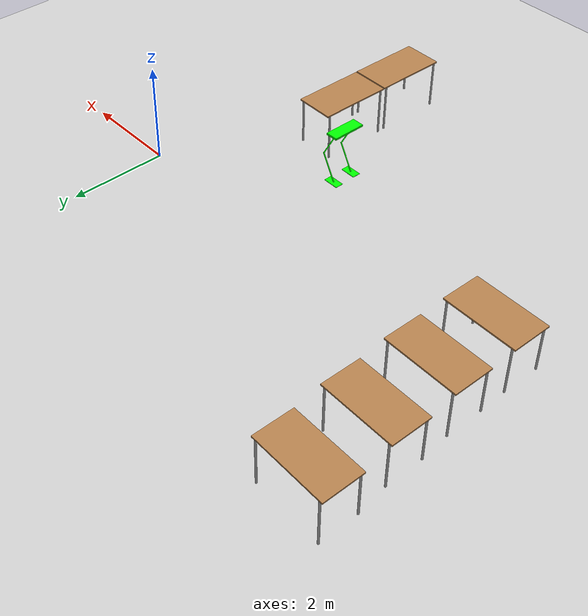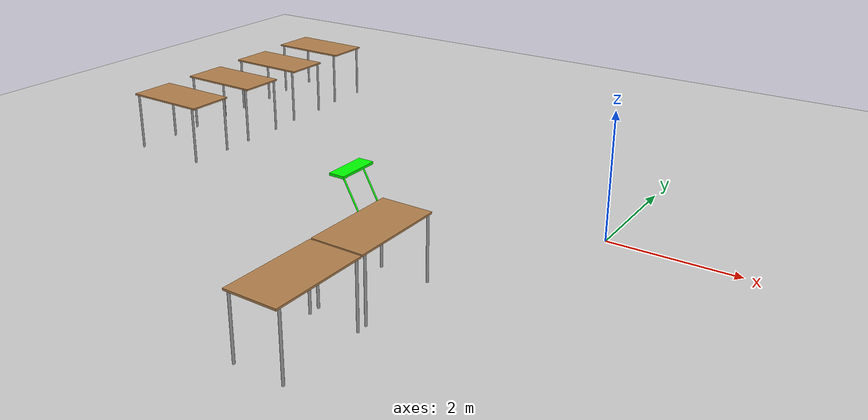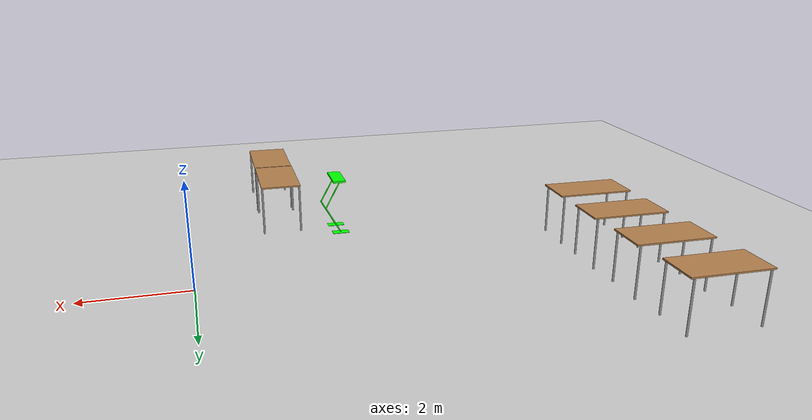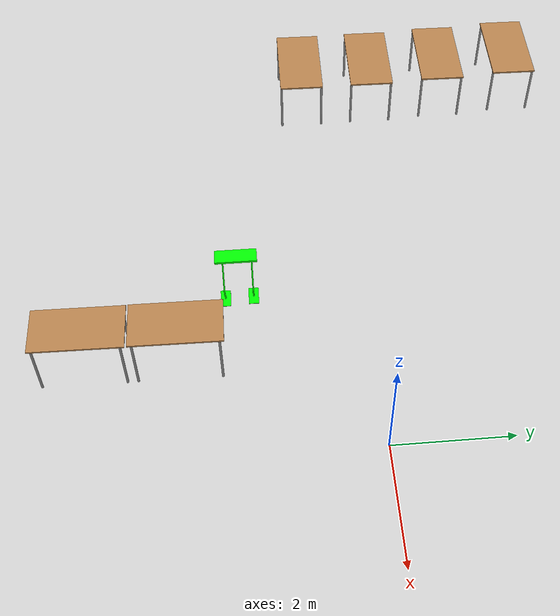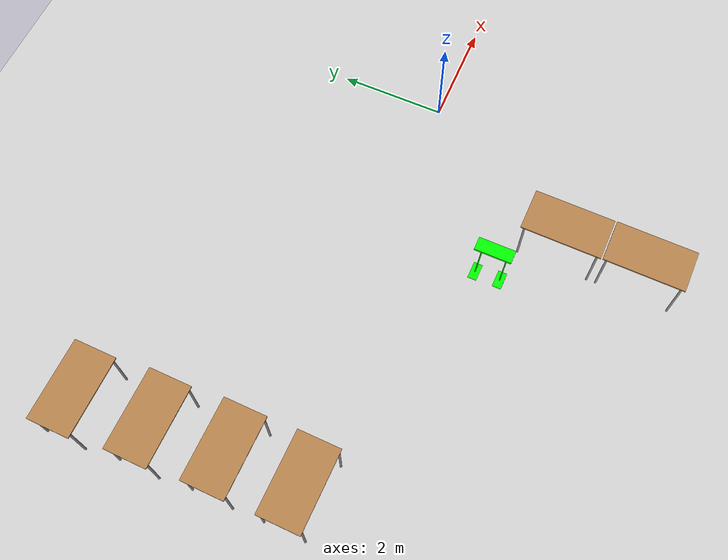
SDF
<sdf version="1.7">
 <world name="default">
  <model name="table">
   <static>1</static>
   <link name="link">
    <collision name="surface">
     <pose>0 0 1 0 -0 0</pose>
     <geometry><box><size>1.5 0.8 0.03</size></box></geometry>
     <surface><friction><ode><mu>0.6</mu><mu2>0.6</mu2></ode></friction></surface>
    </collision>
    <visual name="visual1">
     <pose>0 0 1 0 -0 0</pose>
     <geometry><box><size>1.5 0.8 0.03</size></box></geometry>
     <material>
      <script><uri>file://media/materials/scripts/gazebo.material</uri><name>Gazebo/Wood</name></script>
     </material>
    </visual>
    <collision name="front_left_leg">
     <pose>0.68 0.38 0.5 0 -0 0</pose>
     <geometry><cylinder><radius>0.02</radius><length>1</length></cylinder></geometry>
    </collision>
    <visual name="front_left_leg">
     <pose>0.68 0.38 0.5 0 -0 0</pose>
     <geometry><cylinder><radius>0.02</radius><length>1</length></cylinder></geometry>
     <material>
      <script><uri>file://media/materials/scripts/gazebo.material</uri><name>Gazebo/Grey</name></script>
     </material>
    </visual>
    <collision name="front_right_leg">
     <pose>0.68 -0.38 0.5 0 -0 0</pose>
     <geometry><cylinder><radius>0.02</radius><length>1</length></cylinder></geometry>
    </collision>
    <visual name="front_right_leg">
     <pose>0.68 -0.38 0.5 0 -0 0</pose>
     <geometry><cylinder><radius>0.02</radius><length>1</length></cylinder></geometry>
     <material>
      <script><uri>file://media/materials/scripts/gazebo.material</uri><name>Gazebo/Grey</name></script>
     </material>
    </visual>
    <collision name="back_right_leg">
     <pose>-0.68 -0.38 0.5 0 -0 0</pose>
     <geometry><cylinder><radius>0.02</radius><length>1</length></cylinder></geometry>
    </collision>
    <visual name="back_right_leg">
     <pose>-0.68 -0.38 0.5 0 -0 0</pose>
     <geometry><cylinder><radius>0.02</radius><length>1</length></cylinder></geometry>
     <material>
      <script><uri>file://media/materials/scripts/gazebo.material</uri><name>Gazebo/Grey</name></script>
     </material>
    </visual>
    <collision name="back_left_leg">
     <pose>-0.68 0.38 0.5 0 -0 0</pose>
     <geometry><cylinder><radius>0.02</radius><length>1</length></cylinder></geometry>
    </collision>
    <visual name="back_left_leg">
     <pose>-0.68 0.38 0.5 0 -0 0</pose>
     <geometry><cylinder><radius>0.02</radius><length>1</length></cylinder></geometry>
     <material>
      <script><uri>file://media/materials/scripts/gazebo.material</uri><name>Gazebo/Grey</name></script>
     </material>
    </visual>
   </link>
   <pose>-1.8765 -3.16939 0 0 0 -1.58492</pose>
  </model>
  <model name="table_clone">
   <static>1</static>
   <link name="link">
    <collision name="surface">
     <pose>0 0 1 0 -0 0</pose>
     <geometry><box><size>1.5 0.8 0.03</size></box></geometry>
     <surface><friction><ode><mu>0.6</mu><mu2>0.6</mu2></ode></friction></surface>
    </collision>
    <visual name="visual1">
     <pose>0 0 1 0 -0 0</pose>
     <geometry><box><size>1.5 0.8 0.03</size></box></geometry>
     <material>
      <script><uri>file://media/materials/scripts/gazebo.material</uri><name>Gazebo/Wood</name></script>
     </material>
    </visual>
    <collision name="front_left_leg">
     <pose>0.68 0.38 0.5 0 -0 0</pose>
     <geometry><cylinder><radius>0.02</radius><length>1</length></cylinder></geometry>
    </collision>
    <visual name="front_left_leg">
     <pose>0.68 0.38 0.5 0 -0 0</pose>
     <geometry><cylinder><radius>0.02</radius><length>1</length></cylinder></geometry>
     <material>
      <script><uri>file://media/materials/scripts/gazebo.material</uri><name>Gazebo/Grey</name></script>
     </material>
    </visual>
    <collision name="front_right_leg">
     <pose>0.68 -0.38 0.5 0 -0 0</pose>
     <geometry><cylinder><radius>0.02</radius><length>1</length></cylinder></geometry>
    </collision>
    <visual name="front_right_leg">
     <pose>0.68 -0.38 0.5 0 -0 0</pose>
     <geometry><cylinder><radius>0.02</radius><length>1</length></cylinder></geometry>
     <material>
      <script><uri>file://media/materials/scripts/gazebo.material</uri><name>Gazebo/Grey</name></script>
     </material>
    </visual>
    <collision name="back_right_leg">
     <pose>-0.68 -0.38 0.5 0 -0 0</pose>
     <geometry><cylinder><radius>0.02</radius><length>1</length></cylinder></geometry>
    </collision>
    <visual name="back_right_leg">
     <pose>-0.68 -0.38 0.5 0 -0 0</pose>
     <geometry><cylinder><radius>0.02</radius><length>1</length></cylinder></geometry>
     <material>
      <script><uri>file://media/materials/scripts/gazebo.material</uri><name>Gazebo/Grey</name></script>
     </material>
    </visual>
    <collision name="back_left_leg">
     <pose>-0.68 0.38 0.5 0 -0 0</pose>
     <geometry><cylinder><radius>0.02</radius><length>1</length></cylinder></geometry>
    </collision>
    <visual name="back_left_leg">
     <pose>-0.68 0.38 0.5 0 -0 0</pose>
     <geometry><cylinder><radius>0.02</radius><length>1</length></cylinder></geometry>
     <material>
      <script><uri>file://media/materials/scripts/gazebo.material</uri><name>Gazebo/Grey</name></script>
     </material>
    </visual>
   </link>
   <pose>-1.89111 -4.70011 0 0 0 -1.58492</pose>
  </model>
  <model name="table_clone_4">
   <static>1</static>
   <link name="link">
    <collision name="surface">
     <pose>0 0 1 0 -0 0</pose>
     <geometry><box><size>1.5 0.8 0.03</size></box></geometry>
     <surface><friction><ode><mu>0.6</mu><mu2>0.6</mu2></ode></friction></surface>
    </collision>
    <visual name="visual1">
     <pose>0 0 1 0 -0 0</pose>
     <geometry><box><size>1.5 0.8 0.03</size></box></geometry>
     <material>
      <script><uri>file://media/materials/scripts/gazebo.material</uri><name>Gazebo/Wood</name></script>
     </material>
    </visual>
    <collision name="front_left_leg">
     <pose>0.68 0.38 0.5 0 -0 0</pose>
     <geometry><cylinder><radius>0.02</radius><length>1</length></cylinder></geometry>
    </collision>
    <visual name="front_left_leg">
     <pose>0.68 0.38 0.5 0 -0 0</pose>
     <geometry><cylinder><radius>0.02</radius><length>1</length></cylinder></geometry>
     <material>
      <script><uri>file://media/materials/scripts/gazebo.material</uri><name>Gazebo/Grey</name></script>
     </material>
    </visual>
    <collision name="front_right_leg">
     <pose>0.68 -0.38 0.5 0 -0 0</pose>
     <geometry><cylinder><radius>0.02</radius><length>1</length></cylinder></geometry>
    </collision>
    <visual name="front_right_leg">
     <pose>0.68 -0.38 0.5 0 -0 0</pose>
     <geometry><cylinder><radius>0.02</radius><length>1</length></cylinder></geometry>
     <material>
      <script><uri>file://media/materials/scripts/gazebo.material</uri><name>Gazebo/Grey</name></script>
     </material>
    </visual>
    <collision name="back_right_leg">
     <pose>-0.68 -0.38 0.5 0 -0 0</pose>
     <geometry><cylinder><radius>0.02</radius><length>1</length></cylinder></geometry>
    </collision>
    <visual name="back_right_leg">
     <pose>-0.68 -0.38 0.5 0 -0 0</pose>
     <geometry><cylinder><radius>0.02</radius><length>1</length></cylinder></geometry>
     <material>
      <script><uri>file://media/materials/scripts/gazebo.material</uri><name>Gazebo/Grey</name></script>
     </material>
    </visual>
    <collision name="back_left_leg">
     <pose>-0.68 0.38 0.5 0 -0 0</pose>
     <geometry><cylinder><radius>0.02</radius><length>1</length></cylinder></geometry>
    </collision>
    <visual name="back_left_leg">
     <pose>-0.68 0.38 0.5 0 -0 0</pose>
     <geometry><cylinder><radius>0.02</radius><length>1</length></cylinder></geometry>
     <material>
      <script><uri>file://media/materials/scripts/gazebo.material</uri><name>Gazebo/Grey</name></script>
     </material>
    </visual>
   </link>
   <pose>-7.89352 -0.740186 0 0 -0 3.12353</pose>
  </model>
  <model name="table_clone_4_clone">
   <static>1</static>
   <link name="link">
    <collision name="surface">
     <pose>0 0 1 0 -0 0</pose>
     <geometry><box><size>1.5 0.8 0.03</size></box></geometry>
     <surface><friction><ode><mu>0.6</mu><mu2>0.6</mu2></ode></friction></surface>
    </collision>
    <visual name="visual1">
     <pose>0 0 1 0 -0 0</pose>
     <geometry><box><size>1.5 0.8 0.03</size></box></geometry>
     <material>
      <script><uri>file://media/materials/scripts/gazebo.material</uri><name>Gazebo/Wood</name></script>
     </material>
    </visual>
    <collision name="front_left_leg">
     <pose>0.68 0.38 0.5 0 -0 0</pose>
     <geometry><cylinder><radius>0.02</radius><length>1</length></cylinder></geometry>
    </collision>
    <visual name="front_left_leg">
     <pose>0.68 0.38 0.5 0 -0 0</pose>
     <geometry><cylinder><radius>0.02</radius><length>1</length></cylinder></geometry>
     <material>
      <script><uri>file://media/materials/scripts/gazebo.material</uri><name>Gazebo/Grey</name></script>
     </material>
    </visual>
    <collision name="front_right_leg">
     <pose>0.68 -0.38 0.5 0 -0 0</pose>
     <geometry><cylinder><radius>0.02</radius><length>1</length></cylinder></geometry>
    </collision>
    <visual name="front_right_leg">
     <pose>0.68 -0.38 0.5 0 -0 0</pose>
     <geometry><cylinder><radius>0.02</radius><length>1</length></cylinder></geometry>
     <material>
      <script><uri>file://media/materials/scripts/gazebo.material</uri><name>Gazebo/Grey</name></script>
     </material>
    </visual>
    <collision name="back_right_leg">
     <pose>-0.68 -0.38 0.5 0 -0 0</pose>
     <geometry><cylinder><radius>0.02</radius><length>1</length></cylinder></geometry>
    </collision>
    <visual name="back_right_leg">
     <pose>-0.68 -0.38 0.5 0 -0 0</pose>
     <geometry><cylinder><radius>0.02</radius><length>1</length></cylinder></geometry>
     <material>
      <script><uri>file://media/materials/scripts/gazebo.material</uri><name>Gazebo/Grey</name></script>
     </material>
    </visual>
    <collision name="back_left_leg">
     <pose>-0.68 0.38 0.5 0 -0 0</pose>
     <geometry><cylinder><radius>0.02</radius><length>1</length></cylinder></geometry>
    </collision>
    <visual name="back_left_leg">
     <pose>-0.68 0.38 0.5 0 -0 0</pose>
     <geometry><cylinder><radius>0.02</radius><length>1</length></cylinder></geometry>
     <material>
      <script><uri>file://media/materials/scripts/gazebo.material</uri><name>Gazebo/Grey</name></script>
     </material>
    </visual>
   </link>
   <pose>-7.89263 0.594311 0 0 -0 3.12353</pose>
  </model>
  <model name="table_clone_4_clone_0">
   <static>1</static>
   <link name="link">
    <collision name="surface">
     <pose>0 0 1 0 -0 0</pose>
     <geometry><box><size>1.5 0.8 0.03</size></box></geometry>
     <surface><friction><ode><mu>0.6</mu><mu2>0.6</mu2></ode></friction></surface>
    </collision>
    <visual name="visual1">
     <pose>0 0 1 0 -0 0</pose>
     <geometry><box><size>1.5 0.8 0.03</size></box></geometry>
     <material>
      <script><uri>file://media/materials/scripts/gazebo.material</uri><name>Gazebo/Wood</name></script>
     </material>
    </visual>
    <collision name="front_left_leg">
     <pose>0.68 0.38 0.5 0 -0 0</pose>
     <geometry><cylinder><radius>0.02</radius><length>1</length></cylinder></geometry>
    </collision>
    <visual name="front_left_leg">
     <pose>0.68 0.38 0.5 0 -0 0</pose>
     <geometry><cylinder><radius>0.02</radius><length>1</length></cylinder></geometry>
     <material>
      <script><uri>file://media/materials/scripts/gazebo.material</uri><name>Gazebo/Grey</name></script>
     </material>
    </visual>
    <collision name="front_right_leg">
     <pose>0.68 -0.38 0.5 0 -0 0</pose>
     <geometry><cylinder><radius>0.02</radius><length>1</length></cylinder></geometry>
    </collision>
    <visual name="front_right_leg">
     <pose>0.68 -0.38 0.5 0 -0 0</pose>
     <geometry><cylinder><radius>0.02</radius><length>1</length></cylinder></geometry>
     <material>
      <script><uri>file://media/materials/scripts/gazebo.material</uri><name>Gazebo/Grey</name></script>
     </material>
    </visual>
    <collision name="back_right_leg">
     <pose>-0.68 -0.38 0.5 0 -0 0</pose>
     <geometry><cylinder><radius>0.02</radius><length>1</length></cylinder></geometry>
    </collision>
    <visual name="back_right_leg">
     <pose>-0.68 -0.38 0.5 0 -0 0</pose>
     <geometry><cylinder><radius>0.02</radius><length>1</length></cylinder></geometry>
     <material>
      <script><uri>file://media/materials/scripts/gazebo.material</uri><name>Gazebo/Grey</name></script>
     </material>
    </visual>
    <collision name="back_left_leg">
     <pose>-0.68 0.38 0.5 0 -0 0</pose>
     <geometry><cylinder><radius>0.02</radius><length>1</length></cylinder></geometry>
    </collision>
    <visual name="back_left_leg">
     <pose>-0.68 0.38 0.5 0 -0 0</pose>
     <geometry><cylinder><radius>0.02</radius><length>1</length></cylinder></geometry>
     <material>
      <script><uri>file://media/materials/scripts/gazebo.material</uri><name>Gazebo/Grey</name></script>
     </material>
    </visual>
   </link>
   <pose>-7.93778 1.96008 0 0 -0 3.12353</pose>
  </model>
  <model name="table_clone_4_clone_1">
   <static>1</static>
   <link name="link">
    <collision name="surface">
     <pose>0 0 1 0 -0 0</pose>
     <geometry><box><size>1.5 0.8 0.03</size></box></geometry>
     <surface><friction><ode><mu>0.6</mu><mu2>0.6</mu2></ode></friction></surface>
    </collision>
    <visual name="visual1">
     <pose>0 0 1 0 -0 0</pose>
     <geometry><box><size>1.5 0.8 0.03</size></box></geometry>
     <material>
      <script><uri>file://media/materials/scripts/gazebo.material</uri><name>Gazebo/Wood</name></script>
     </material>
    </visual>
    <collision name="front_left_leg">
     <pose>0.68 0.38 0.5 0 -0 0</pose>
     <geometry><cylinder><radius>0.02</radius><length>1</length></cylinder></geometry>
    </collision>
    <visual name="front_left_leg">
     <pose>0.68 0.38 0.5 0 -0 0</pose>
     <geometry><cylinder><radius>0.02</radius><length>1</length></cylinder></geometry>
     <material>
      <script><uri>file://media/materials/scripts/gazebo.material</uri><name>Gazebo/Grey</name></script>
     </material>
    </visual>
    <collision name="front_right_leg">
     <pose>0.68 -0.38 0.5 0 -0 0</pose>
     <geometry><cylinder><radius>0.02</radius><length>1</length></cylinder></geometry>
    </collision>
    <visual name="front_right_leg">
     <pose>0.68 -0.38 0.5 0 -0 0</pose>
     <geometry><cylinder><radius>0.02</radius><length>1</length></cylinder></geometry>
     <material>
      <script><uri>file://media/materials/scripts/gazebo.material</uri><name>Gazebo/Grey</name></script>
     </material>
    </visual>
    <collision name="back_right_leg">
     <pose>-0.68 -0.38 0.5 0 -0 0</pose>
     <geometry><cylinder><radius>0.02</radius><length>1</length></cylinder></geometry>
    </collision>
    <visual name="back_right_leg">
     <pose>-0.68 -0.38 0.5 0 -0 0</pose>
     <geometry><cylinder><radius>0.02</radius><length>1</length></cylinder></geometry>
     <material>
      <script><uri>file://media/materials/scripts/gazebo.material</uri><name>Gazebo/Grey</name></script>
     </material>
    </visual>
    <collision name="back_left_leg">
     <pose>-0.68 0.38 0.5 0 -0 0</pose>
     <geometry><cylinder><radius>0.02</radius><length>1</length></cylinder></geometry>
    </collision>
    <visual name="back_left_leg">
     <pose>-0.68 0.38 0.5 0 -0 0</pose>
     <geometry><cylinder><radius>0.02</radius><length>1</length></cylinder></geometry>
     <material>
      <script><uri>file://media/materials/scripts/gazebo.material</uri><name>Gazebo/Grey</name></script>
     </material>
    </visual>
   </link>
   <pose>-8.00369 3.35046 0 0 -0 3.12353</pose>
  </model>
  <model name="ground_plane">
   <static>1</static>
   <link name="link">
    <collision name="collision">
     <geometry><plane><normal>0 0 1</normal><size>100 100</size></plane></geometry>
     <surface>
      <contact><collide_bitmask>65535</collide_bitmask></contact>
      <friction><ode><mu>100</mu><mu2>50</mu2></ode></friction>
     </surface>
    </collision>
    <visual name="visual">
     <cast_shadows>0</cast_shadows>
     <geometry><plane><normal>0 0 1</normal><size>100 100</size></plane></geometry>
     <material>
      <script><uri>file://media/materials/scripts/gazebo.material</uri><name>Gazebo/Grey</name></script>
     </material>
    </visual>
   </link>
   <pose>-4.07315 -7.5209 0 0 -0 0</pose>
  </model>
  <model name="green-robot">
   <model name="green-robot">
    <link name="link_0">
     <inertial>
      <mass>0.00693394</mass>
      <inertia>
       <ixx>0.00027257</ixx>
       <ixy>0</ixy>
       <ixz>0</ixz>
       <iyy>3.743e-05</iyy>
       <iyz>0</iyz>
       <izz>0.00030813</izz>
      </inertia>
     </inertial>
     <pose>-0.000636 0.001622 1.21471 0 -0 0</pose>
     <gravity>0</gravity>
     <visual name="visual">
      <geometry><box><size>0.251315 0.685637 0.040238</size></box></geometry>
      <material>
       <lighting>1</lighting>
       <script><uri>file://media/materials/scripts/gazebo.material</uri><name>Gazebo/Grey</name></script>
       <shader type="pixel"><normal_map>__default__</normal_map></shader>
       <ambient>0 1 0 1</ambient>
       <diffuse>0 1 0 1</diffuse>
       <specular>0 1 0 1</specular>
       <emissive>0 0 0 1</emissive>
      </material>
     </visual>
     <collision name="collision">
      <geometry><box><size>0.251315 0.685637 0.040238</size></box></geometry>
      <surface>
       <friction>
        <ode><mu>1</mu><mu2>1</mu2><fdir1>0 0 0</fdir1><slip1>0</slip1><slip2>0</slip2></ode>
        <torsional>
         <coefficient>1</coefficient>
         <patch_radius>0</patch_radius>
         <surface_radius>0</surface_radius>
         <use_patch_radius>1</use_patch_radius>
         <ode><slip>0</slip></ode>
        </torsional>
       </friction>
       <bounce><restitution_coefficient>0</restitution_coefficient><threshold>1e+06</threshold></bounce>
       <contact>
        <collide_without_contact>0</collide_without_contact>
        <collide_without_contact_bitmask>1</collide_without_contact_bitmask>
        <collide_bitmask>1</collide_bitmask>
        <ode>
         <soft_cfm>0</soft_cfm>
         <soft_erp>0.2</soft_erp>
         <kp>1e+13</kp>
         <kd>1</kd>
         <max_vel>0.01</max_vel>
         <min_depth>0</min_depth>
        </ode>
        <bullet>
         <split_impulse>1</split_impulse>
         <split_impulse_penetration_threshold>-0.01</split_impulse_penetration_threshold>
         <soft_cfm>0</soft_cfm>
         <soft_erp>0.2</soft_erp>
         <kp>1e+13</kp>
         <kd>1</kd>
        </bullet>
       </contact>
      </surface>
     </collision>
    </link>
    <link name="link_0_0_clone">
     <inertial>
      <mass>0.000350394</mass>
      <inertia>
       <ixx>1.10999e-05</ixx>
       <ixy>0</ixy>
       <ixz>0</ixz>
       <iyy>1.10999e-05</iyy>
       <iyz>0</iyz>
       <izz>2.49424e-08</izz>
      </inertia>
     </inertial>
     <pose>0.148869 -0.215496 0.920825 0 -0.497724 0</pose>
     <visual name="visual_0">
      <geometry><cylinder><radius>0.0119318</radius><length>0.616209</length></cylinder></geometry>
      <material>
       <lighting>1</lighting>
       <script><uri>file://media/materials/scripts/gazebo.material</uri><name>Gazebo/Grey</name></script>
       <shader type="pixel"><normal_map>__default__</normal_map></shader>
       <ambient>0 1 0 1</ambient>
       <diffuse>0 1 0 1</diffuse>
       <specular>0 1 0 1</specular>
       <emissive>0 0 0 1</emissive>
      </material>
     </visual>
     <collision name="collision">
      <geometry><cylinder><radius>0.011932</radius><length>0.616209</length></cylinder></geometry>
      <surface>
       <friction>
        <ode><mu>1</mu><mu2>1</mu2><fdir1>0 0 0</fdir1><slip1>0</slip1><slip2>0</slip2></ode>
        <torsional>
         <coefficient>1</coefficient>
         <patch_radius>0</patch_radius>
         <surface_radius>0</surface_radius>
         <use_patch_radius>1</use_patch_radius>
         <ode><slip>0</slip></ode>
        </torsional>
       </friction>
       <bounce><restitution_coefficient>0</restitution_coefficient><threshold>1e+06</threshold></bounce>
       <contact>
        <collide_without_contact>0</collide_without_contact>
        <collide_without_contact_bitmask>1</collide_without_contact_bitmask>
        <collide_bitmask>1</collide_bitmask>
        <ode>
         <soft_cfm>0</soft_cfm>
         <soft_erp>0.2</soft_erp>
         <kp>1e+13</kp>
         <kd>1</kd>
         <max_vel>0.01</max_vel>
         <min_depth>0</min_depth>
        </ode>
        <bullet>
         <split_impulse>1</split_impulse>
         <split_impulse_penetration_threshold>-0.01</split_impulse_penetration_threshold>
         <soft_cfm>0</soft_cfm>
         <soft_erp>0.2</soft_erp>
         <kp>1e+13</kp>
         <kd>1</kd>
        </bullet>
       </contact>
      </surface>
     </collision>
    </link>
    <link name="link_0_0_clone_clone">
     <inertial>
      <mass>0.000350394</mass>
      <inertia>
       <ixx>1.10999e-05</ixx>
       <ixy>0</ixy>
       <ixz>0</ixz>
       <iyy>1.10999e-05</iyy>
       <iyz>0</iyz>
       <izz>2.49424e-08</izz>
      </inertia>
     </inertial>
     <pose>0.128825 0.256686 0.921798 0 -0.497724 0</pose>
     <visual name="visual_0">
      <geometry><cylinder><radius>0.0119318</radius><length>0.616209</length></cylinder></geometry>
      <material>
       <lighting>1</lighting>
       <script><uri>file://media/materials/scripts/gazebo.material</uri><name>Gazebo/Grey</name></script>
       <shader type="pixel"><normal_map>__default__</normal_map></shader>
       <ambient>0 1 0 1</ambient>
       <diffuse>0 1 0 1</diffuse>
       <specular>0 1 0 1</specular>
       <emissive>0 0 0 1</emissive>
      </material>
     </visual>
     <collision name="collision">
      <geometry><cylinder><radius>0.011932</radius><length>0.616209</length></cylinder></geometry>
      <surface>
       <friction>
        <ode><mu>1</mu><mu2>1</mu2><fdir1>0 0 0</fdir1><slip1>0</slip1><slip2>0</slip2></ode>
        <torsional>
         <coefficient>1</coefficient>
         <patch_radius>0</patch_radius>
         <surface_radius>0</surface_radius>
         <use_patch_radius>1</use_patch_radius>
         <ode><slip>0</slip></ode>
        </torsional>
       </friction>
       <bounce><restitution_coefficient>0</restitution_coefficient><threshold>1e+06</threshold></bounce>
       <contact>
        <collide_without_contact>0</collide_without_contact>
        <collide_without_contact_bitmask>1</collide_without_contact_bitmask>
        <collide_bitmask>1</collide_bitmask>
        <ode>
         <soft_cfm>0</soft_cfm>
         <soft_erp>0.2</soft_erp>
         <kp>1e+13</kp>
         <kd>1</kd>
         <max_vel>0.01</max_vel>
         <min_depth>0</min_depth>
        </ode>
        <bullet>
         <split_impulse>1</split_impulse>
         <split_impulse_penetration_threshold>-0.01</split_impulse_penetration_threshold>
         <soft_cfm>0</soft_cfm>
         <soft_erp>0.2</soft_erp>
         <kp>1e+13</kp>
         <kd>1</kd>
        </bullet>
       </contact>
      </surface>
     </collision>
    </link>
    <link name="link_0_0_clone_clone_2">
     <inertial>
      <mass>0.000350394</mass>
      <inertia>
       <ixx>1.10999e-05</ixx>
       <ixy>0</ixy>
       <ixz>0</ixz>
       <iyy>1.10999e-05</iyy>
       <iyz>0</iyz>
       <izz>2.49424e-08</izz>
      </inertia>
     </inertial>
     <pose>0.152447 -0.215495 0.389072 0 0.511281 0</pose>
     <visual name="visual_0">
      <geometry><cylinder><radius>0.0119318</radius><length>0.616209</length></cylinder></geometry>
      <material>
       <lighting>1</lighting>
       <script><uri>file://media/materials/scripts/gazebo.material</uri><name>Gazebo/Grey</name></script>
       <shader type="pixel"><normal_map>__default__</normal_map></shader>
       <ambient>0 1 0 1</ambient>
       <diffuse>0 1 0 1</diffuse>
       <specular>0 1 0 1</specular>
       <emissive>0 0 0 1</emissive>
      </material>
     </visual>
     <collision name="collision">
      <geometry><cylinder><radius>0.011932</radius><length>0.616209</length></cylinder></geometry>
      <surface>
       <friction>
        <ode><mu>1</mu><mu2>1</mu2><fdir1>0 0 0</fdir1><slip1>0</slip1><slip2>0</slip2></ode>
        <torsional>
         <coefficient>1</coefficient>
         <patch_radius>0</patch_radius>
         <surface_radius>0</surface_radius>
         <use_patch_radius>1</use_patch_radius>
         <ode><slip>0</slip></ode>
        </torsional>
       </friction>
       <bounce><restitution_coefficient>0</restitution_coefficient><threshold>1e+06</threshold></bounce>
       <contact>
        <collide_without_contact>0</collide_without_contact>
        <collide_without_contact_bitmask>1</collide_without_contact_bitmask>
        <collide_bitmask>1</collide_bitmask>
        <ode>
         <soft_cfm>0</soft_cfm>
         <soft_erp>0.2</soft_erp>
         <kp>1e+13</kp>
         <kd>1</kd>
         <max_vel>0.01</max_vel>
         <min_depth>0</min_depth>
        </ode>
        <bullet>
         <split_impulse>1</split_impulse>
         <split_impulse_penetration_threshold>-0.01</split_impulse_penetration_threshold>
         <soft_cfm>0</soft_cfm>
         <soft_erp>0.2</soft_erp>
         <kp>1e+13</kp>
         <kd>1</kd>
        </bullet>
       </contact>
      </surface>
     </collision>
    </link>
    <link name="link_0_0_clone_clone_2_clone">
     <inertial>
      <mass>0.000350394</mass>
      <inertia>
       <ixx>1.10999e-05</ixx>
       <ixy>0</ixy>
       <ixz>0</ixz>
       <iyy>1.10999e-05</iyy>
       <iyz>0</iyz>
       <izz>2.49424e-08</izz>
      </inertia>
     </inertial>
     <pose>0.132403 0.256686 0.389072 0 0.511281 0</pose>
     <visual name="visual_0">
      <geometry><cylinder><radius>0.0119318</radius><length>0.616209</length></cylinder></geometry>
      <material>
       <lighting>1</lighting>
       <script><uri>file://media/materials/scripts/gazebo.material</uri><name>Gazebo/Grey</name></script>
       <shader type="pixel"><normal_map>__default__</normal_map></shader>
       <ambient>0 1 0 1</ambient>
       <diffuse>0 1 0 1</diffuse>
       <specular>0 1 0 1</specular>
       <emissive>0 0 0 1</emissive>
      </material>
     </visual>
     <collision name="collision">
      <geometry><cylinder><radius>0.011932</radius><length>0.616209</length></cylinder></geometry>
      <surface>
       <friction>
        <ode><mu>1</mu><mu2>1</mu2><fdir1>0 0 0</fdir1><slip1>0</slip1><slip2>0</slip2></ode>
        <torsional>
         <coefficient>1</coefficient>
         <patch_radius>0</patch_radius>
         <surface_radius>0</surface_radius>
         <use_patch_radius>1</use_patch_radius>
         <ode><slip>0</slip></ode>
        </torsional>
       </friction>
       <bounce><restitution_coefficient>0</restitution_coefficient><threshold>1e+06</threshold></bounce>
       <contact>
        <collide_without_contact>0</collide_without_contact>
        <collide_without_contact_bitmask>1</collide_without_contact_bitmask>
        <collide_bitmask>1</collide_bitmask>
        <ode>
         <soft_cfm>0</soft_cfm>
         <soft_erp>0.2</soft_erp>
         <kp>1e+13</kp>
         <kd>1</kd>
         <max_vel>0.01</max_vel>
         <min_depth>0</min_depth>
        </ode>
        <bullet>
         <split_impulse>1</split_impulse>
         <split_impulse_penetration_threshold>-0.01</split_impulse_penetration_threshold>
         <soft_cfm>0</soft_cfm>
         <soft_erp>0.2</soft_erp>
         <kp>1e+13</kp>
         <kd>1</kd>
        </bullet>
       </contact>
      </surface>
     </collision>
    </link>
    <link name="link_0_clone">
     <inertial>
      <mass>0.000508908</mass>
      <inertia>
       <ixx>4.59216e-06</ixx>
       <ixy>0</ixy>
       <ixz>0</ixz>
       <iyy>1.22054e-06</iyy>
       <iyz>0</iyz>
       <izz>5.80563e-06</izz>
      </inertia>
     </inertial>
     <pose>0.003853 -0.215495 0.119095 0 0 -1.57803</pose>
     <visual name="visual">
      <geometry><box><size>0.169401 0.328937 0.009131</size></box></geometry>
      <material>
       <lighting>1</lighting>
       <script><uri>file://media/materials/scripts/gazebo.material</uri><name>Gazebo/Grey</name></script>
       <shader type="pixel"><normal_map>__default__</normal_map></shader>
       <ambient>0 1 0 1</ambient>
       <diffuse>0 1 0 1</diffuse>
       <specular>0 1 0 1</specular>
       <emissive>0 0 0 1</emissive>
      </material>
     </visual>
     <collision name="collision">
      <geometry><box><size>0.169401 0.328937 0.009131</size></box></geometry>
      <surface>
       <friction>
        <ode><mu>1</mu><mu2>1</mu2><fdir1>0 0 0</fdir1><slip1>0</slip1><slip2>0</slip2></ode>
        <torsional>
         <coefficient>1</coefficient>
         <patch_radius>0</patch_radius>
         <surface_radius>0</surface_radius>
         <use_patch_radius>1</use_patch_radius>
         <ode><slip>0</slip></ode>
        </torsional>
       </friction>
       <bounce><restitution_coefficient>0</restitution_coefficient><threshold>1e+06</threshold></bounce>
       <contact>
        <collide_without_contact>0</collide_without_contact>
        <collide_without_contact_bitmask>1</collide_without_contact_bitmask>
        <collide_bitmask>1</collide_bitmask>
        <ode>
         <soft_cfm>0</soft_cfm>
         <soft_erp>0.2</soft_erp>
         <kp>1e+13</kp>
         <kd>1</kd>
         <max_vel>0.01</max_vel>
         <min_depth>0</min_depth>
        </ode>
        <bullet>
         <split_impulse>1</split_impulse>
         <split_impulse_penetration_threshold>-0.01</split_impulse_penetration_threshold>
         <soft_cfm>0</soft_cfm>
         <soft_erp>0.2</soft_erp>
         <kp>1e+13</kp>
         <kd>1</kd>
        </bullet>
       </contact>
      </surface>
     </collision>
    </link>
    <link name="link_0_clone_clone">
     <inertial>
      <mass>0.000508908</mass>
      <inertia>
       <ixx>4.59216e-06</ixx>
       <ixy>0</ixy>
       <ixz>0</ixz>
       <iyy>1.22054e-06</iyy>
       <iyz>0</iyz>
       <izz>5.80563e-06</izz>
      </inertia>
     </inertial>
     <pose>-0.01593 0.256685 0.119095 0 0 -1.57803</pose>
     <visual name="visual">
      <geometry><box><size>0.169401 0.328937 0.009131</size></box></geometry>
      <material>
       <lighting>1</lighting>
       <script><uri>file://media/materials/scripts/gazebo.material</uri><name>Gazebo/Grey</name></script>
       <shader type="pixel"><normal_map>__default__</normal_map></shader>
       <ambient>0 1 0 1</ambient>
       <diffuse>0 1 0 1</diffuse>
       <specular>0 1 0 1</specular>
       <emissive>0 0 0 1</emissive>
      </material>
     </visual>
     <collision name="collision">
      <geometry><box><size>0.169401 0.328937 0.009131</size></box></geometry>
      <surface>
       <friction>
        <ode><mu>1</mu><mu2>1</mu2><fdir1>0 0 0</fdir1><slip1>0</slip1><slip2>0</slip2></ode>
        <torsional>
         <coefficient>1</coefficient>
         <patch_radius>0</patch_radius>
         <surface_radius>0</surface_radius>
         <use_patch_radius>1</use_patch_radius>
         <ode><slip>0</slip></ode>
        </torsional>
       </friction>
       <bounce><restitution_coefficient>0</restitution_coefficient><threshold>1e+06</threshold></bounce>
       <contact>
        <collide_without_contact>0</collide_without_contact>
        <collide_without_contact_bitmask>1</collide_without_contact_bitmask>
        <collide_bitmask>1</collide_bitmask>
        <ode>
         <soft_cfm>0</soft_cfm>
         <soft_erp>0.2</soft_erp>
         <kp>1e+13</kp>
         <kd>1</kd>
         <max_vel>0.01</max_vel>
         <min_depth>0</min_depth>
        </ode>
        <bullet>
         <split_impulse>1</split_impulse>
         <split_impulse_penetration_threshold>-0.01</split_impulse_penetration_threshold>
         <soft_cfm>0</soft_cfm>
         <soft_erp>0.2</soft_erp>
         <kp>1e+13</kp>
         <kd>1</kd>
        </bullet>
       </contact>
      </surface>
     </collision>
    </link>
    <joint name="link_0_0_clone_JOINT_6" type="fixed">
     <parent>link_0_0_clone</parent>
     <child>link_0_0_clone_clone_2</child>
     <physics>
      <ode><limit><cfm>0</cfm><erp>0.2</erp></limit><suspension><cfm>0</cfm><erp>0.2</erp></suspension></ode>
     </physics>
    </joint>
    <joint name="link_0_0_clone_clone_2_JOINT_10" type="fixed">
     <parent>link_0_0_clone_clone_2</parent>
     <child>link_0_clone</child>
     <physics>
      <ode><limit><cfm>0</cfm><erp>0.2</erp></limit><suspension><cfm>0</cfm><erp>0.2</erp></suspension></ode>
     </physics>
    </joint>
    <joint name="link_0_0_clone_clone_2_JOINT_11" type="fixed">
     <parent>link_0_0_clone_clone_2</parent>
     <child>link_0_clone</child>
     <physics>
      <ode><limit><cfm>0</cfm><erp>0.2</erp></limit><suspension><cfm>0</cfm><erp>0.2</erp></suspension></ode>
     </physics>
    </joint>
    <joint name="link_0_0_clone_clone_2_clone_JOINT_12" type="fixed">
     <parent>link_0_0_clone_clone_2_clone</parent>
     <child>link_0_clone_clone</child>
     <physics>
      <ode><limit><cfm>0</cfm><erp>0.2</erp></limit><suspension><cfm>0</cfm><erp>0.2</erp></suspension></ode>
     </physics>
    </joint>
    <joint name="link_0_0_clone_clone_JOINT_8" type="fixed">
     <parent>link_0_0_clone_clone</parent>
     <child>link_0_0_clone_clone_2_clone</child>
     <physics>
      <ode><limit><cfm>0</cfm><erp>0.2</erp></limit><suspension><cfm>0</cfm><erp>0.2</erp></suspension></ode>
     </physics>
    </joint>
    <joint name="link_0_JOINT_1" type="fixed">
     <parent>link_0</parent>
     <child>link_0_0_clone</child>
     <physics>
      <ode><limit><cfm>0</cfm><erp>0.2</erp></limit><suspension><cfm>0</cfm><erp>0.2</erp></suspension></ode>
     </physics>
    </joint>
    <joint name="link_0_JOINT_4" type="fixed">
     <parent>link_0</parent>
     <child>link_0_0_clone_clone</child>
     <physics>
      <ode><limit><cfm>0</cfm><erp>0.2</erp></limit><suspension><cfm>0</cfm><erp>0.2</erp></suspension></ode>
     </physics>
    </joint>
    <static>0</static>
    <pose>-4e-06 0 0 0 -0 0</pose>
   </model>
   <joint name="link_0_0_clone_JOINT_2" type="fixed">
    <parent>green-robot::link_0_0_clone</parent>
    <child>green-robot::link_0_0_clone_clone</child>
    <physics>
     <ode><limit><cfm>0</cfm><erp>0.2</erp></limit><suspension><cfm>0</cfm><erp>0.2</erp></suspension></ode>
    </physics>
   </joint>
   <joint name="link_0_0_clone_clone_2_JOINT_3" type="fixed">
    <parent>green-robot::link_0_0_clone_clone_2</parent>
    <child>green-robot::link_0_0_clone_clone_2_clone_LINK_FRAME_VISUAL___X_AXIS</child>
    <physics>
     <ode><limit><cfm>0</cfm><erp>0.2</erp></limit><suspension><cfm>0</cfm><erp>0.2</erp></suspension></ode>
    </physics>
   </joint>
   <joint name="link_0_clone_JOINT_4" type="fixed">
    <parent>green-robot::link_0_clone</parent>
    <child>green-robot::link_0_clone_clone</child>
    <physics>
     <ode><limit><cfm>0</cfm><erp>0.2</erp></limit><suspension><cfm>0</cfm><erp>0.2</erp></suspension></ode>
    </physics>
   </joint>
   <static>1</static>
   <pose>-2.9721 -2.17621 -0.014537 -2.9e-05 4e-06 -0.005601</pose>
  </model>
 </world>
</sdf>
